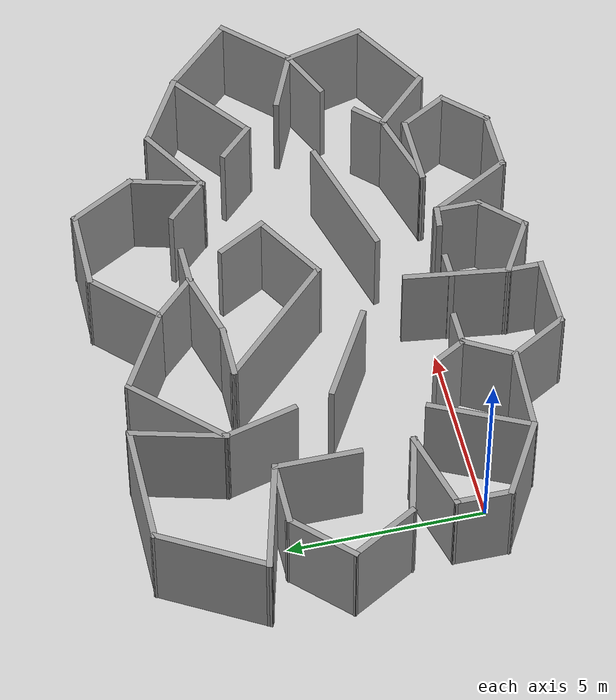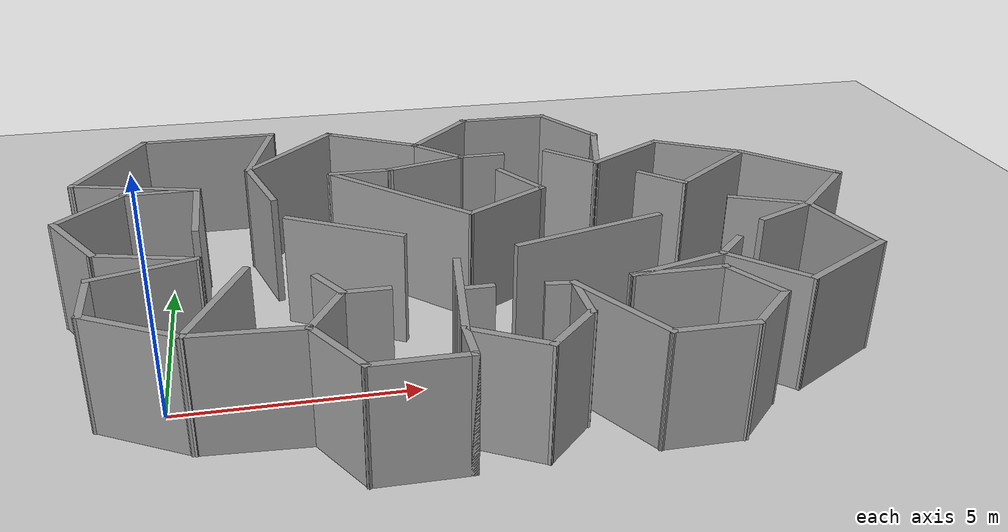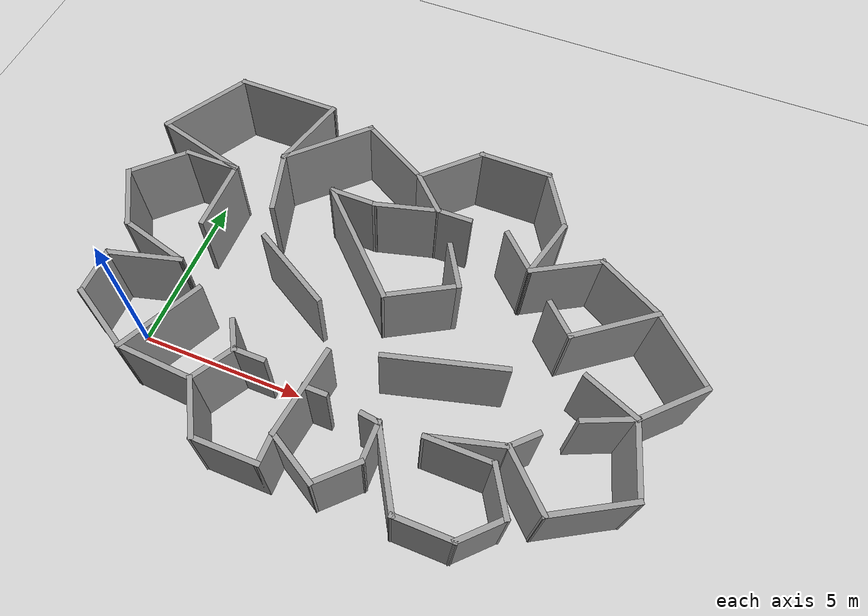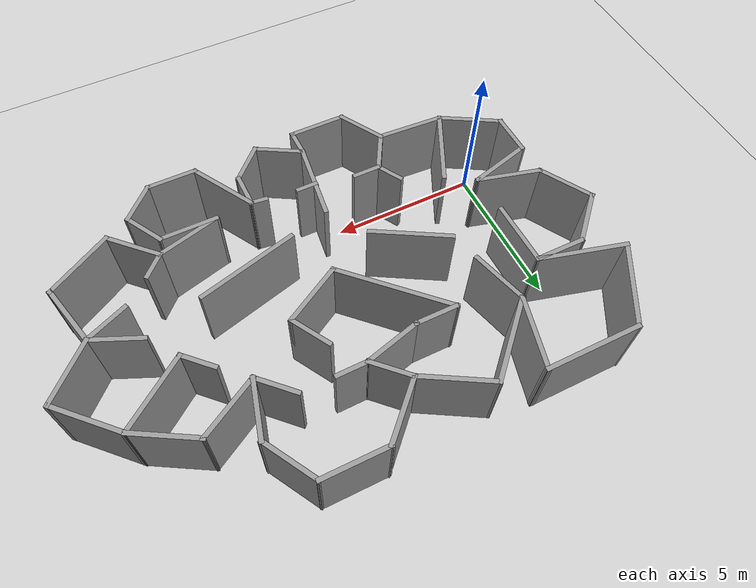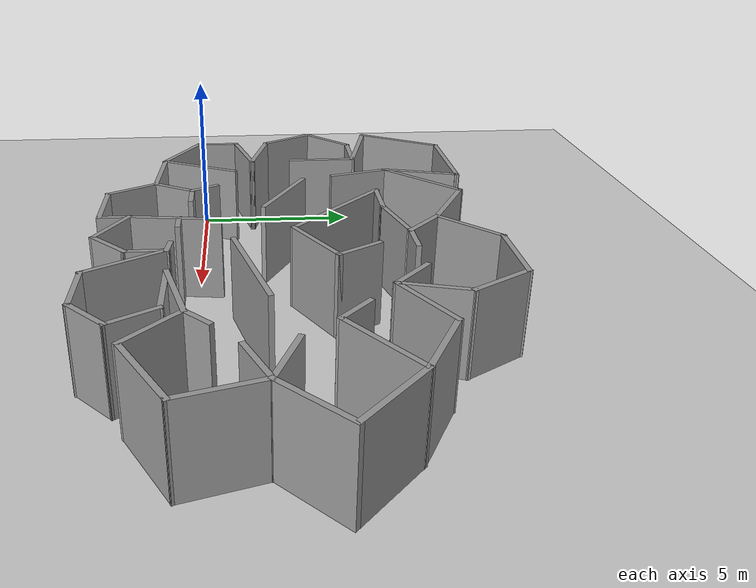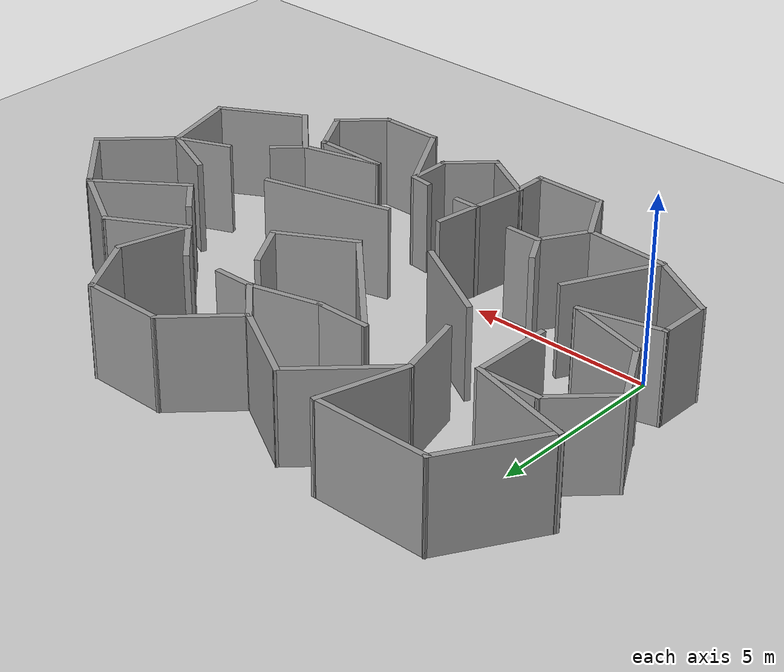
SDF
<sdf version="1.7">
 <world name="default">
  <light name="sun" type="directional">
   <pose>0 0 10 0 -0 0</pose>
   <diffuse>0.8 0.8 0.8 1</diffuse>
   <specular>0.2 0.2 0.2 1</specular>
   <attenuation>
    <range>1000</range>
    <constant>0.9</constant>
    <linear>0.01</linear>
    <quadratic>0.001</quadratic>
   </attenuation>
   <direction>-0.5 0.1 -0.9</direction>
   <spot><inner_angle>0</inner_angle><outer_angle>0</outer_angle><falloff>0</falloff></spot>
  </light>
  <model name="ground_plane">
   <static>1</static>
   <link name="link">
    <collision name="collision">
     <geometry><plane><normal>0 0 1</normal><size>100 100</size></plane></geometry>
     <surface><friction><ode><mu>100</mu><mu2>50</mu2></ode></friction></surface>
    </collision>
    <visual name="visual">
     <cast_shadows>0</cast_shadows>
     <geometry><plane><normal>0 0 1</normal><size>100 100</size></plane></geometry>
     <material>
      <script><uri>file://media/materials/scripts/gazebo.material</uri><name>Gazebo/Grey</name></script>
     </material>
    </visual>
   </link>
  </model>
  <gravity>0 0 -9.8</gravity>
  <magnetic_field>6e-06 2.3e-05 -4.2e-05</magnetic_field>
  <atmosphere type="adiabatic"/>
  <physics type="ode">
   <max_step_size>0.001</max_step_size>
   <real_time_factor>1</real_time_factor>
   <real_time_update_rate>1000</real_time_update_rate>
  </physics>
  <scene><ambient>0.4 0.4 0.4 1</ambient><background>0.7 0.7 0.7 1</background><shadows>1</shadows></scene>
  <spherical_coordinates>
   <surface_model>EARTH_WGS84</surface_model>
   <latitude_deg>0</latitude_deg>
   <longitude_deg>0</longitude_deg>
   <elevation>0</elevation>
   <heading_deg>0</heading_deg>
  </spherical_coordinates>
  <model name="unstructed">
   <pose>6.57413 2.79188 0 0 -0 0</pose>
   <link name="Wall_1">
    <collision name="Wall_1_Collision">
     <geometry><box><size>1 0.15 2.5</size></box></geometry>
     <pose>0 0 1.25 0 -0 0</pose>
    </collision>
    <visual name="Wall_1_Visual">
     <pose>0 0 1.25 0 -0 0</pose>
     <geometry><box><size>1 0.15 2.5</size></box></geometry>
     <material>
      <script><uri>file://media/materials/scripts/gazebo.material</uri><name>Gazebo/Grey</name></script>
      <ambient>1 1 1 1</ambient>
     </material>
     <meta><layer>0</layer></meta>
    </visual>
    <pose>-3.3192 -2.66283 0 0 -0 -1.0472</pose>
   </link>
   <link name="Wall_10">
    <collision name="Wall_10_Collision">
     <geometry><box><size>2.5 0.15 2.5</size></box></geometry>
     <pose>0 0 1.25 0 -0 0</pose>
    </collision>
    <visual name="Wall_10_Visual">
     <pose>0 0 1.25 0 -0 0</pose>
     <geometry><box><size>2.5 0.15 2.5</size></box></geometry>
     <material>
      <script><uri>file://media/materials/scripts/gazebo.material</uri><name>Gazebo/Grey</name></script>
      <ambient>1 1 1 1</ambient>
     </material>
     <meta><layer>0</layer></meta>
    </visual>
    <pose>1.79603 -4.49865 0 0 -0 -1.0472</pose>
   </link>
   <link name="Wall_11">
    <collision name="Wall_11_Collision">
     <geometry><box><size>1.75 0.15 2.5</size></box></geometry>
     <pose>0 0 1.25 0 -0 0</pose>
    </collision>
    <visual name="Wall_11_Visual">
     <pose>0 0 1.25 0 -0 0</pose>
     <geometry><box><size>1.75 0.15 2.5</size></box></geometry>
     <material>
      <script><uri>file://media/materials/scripts/gazebo.material</uri><name>Gazebo/Grey</name></script>
      <ambient>1 1 1 1</ambient>
     </material>
     <meta><layer>0</layer></meta>
    </visual>
    <pose>3.18353 -5.51623 0 0 -0 0</pose>
   </link>
   <link name="Wall_12">
    <collision name="Wall_12_Collision">
     <geometry><box><size>1.5 0.15 2.5</size></box></geometry>
     <pose>0 0 1.25 0 -0 0</pose>
    </collision>
    <visual name="Wall_12_Visual">
     <pose>0 0 1.25 0 -0 0</pose>
     <geometry><box><size>1.5 0.15 2.5</size></box></geometry>
     <material>
      <script><uri>file://media/materials/scripts/gazebo.material</uri><name>Gazebo/Grey</name></script>
      <ambient>1 1 1 1</ambient>
     </material>
     <meta><layer>0</layer></meta>
    </visual>
    <pose>4.46083 -5.03893 0 0 -0 0.785398</pose>
   </link>
   <link name="Wall_13">
    <collision name="Wall_13_Collision">
     <geometry><box><size>1.5 0.15 2.5</size></box></geometry>
     <pose>0 0 1.25 0 -0 0</pose>
    </collision>
    <visual name="Wall_13_Visual">
     <pose>0 0 1.25 0 -0 0</pose>
     <geometry><box><size>1.5 0.15 2.5</size></box></geometry>
     <material>
      <script><uri>file://media/materials/scripts/gazebo.material</uri><name>Gazebo/Grey</name></script>
      <ambient>1 1 1 1</ambient>
     </material>
     <meta><layer>0</layer></meta>
    </visual>
    <pose>4.60063 -3.97707 0 0 -0 2.0944</pose>
   </link>
   <link name="Wall_14">
    <collision name="Wall_14_Collision">
     <geometry><box><size>2 0.15 2.5</size></box></geometry>
     <pose>0 0 1.25 0 -0 0</pose>
    </collision>
    <visual name="Wall_14_Visual">
     <pose>0 0 1.25 0 -0 0</pose>
     <geometry><box><size>2 0.15 2.5</size></box></geometry>
     <material>
      <script><uri>file://media/materials/scripts/gazebo.material</uri><name>Gazebo/Grey</name></script>
      <ambient>1 1 1 1</ambient>
     </material>
     <meta><layer>0</layer></meta>
    </visual>
    <pose>3.33813 -3.3925 0 0 -0 3.14159</pose>
   </link>
   <link name="Wall_15">
    <collision name="Wall_15_Collision">
     <geometry><box><size>2.25 0.15 2.5</size></box></geometry>
     <pose>0 0 1.25 0 -0 0</pose>
    </collision>
    <visual name="Wall_15_Visual">
     <pose>0 0 1.25 0 -0 0</pose>
     <geometry><box><size>2.25 0.15 2.5</size></box></geometry>
     <material>
      <script><uri>file://media/materials/scripts/gazebo.material</uri><name>Gazebo/Grey</name></script>
      <ambient>1 1 1 1</ambient>
     </material>
     <meta><layer>0</layer></meta>
    </visual>
    <pose>3.42735 -3.12074 0 0 -0 0.261799</pose>
   </link>
   <link name="Wall_16">
    <collision name="Wall_16_Collision">
     <geometry><box><size>2 0.15 2.5</size></box></geometry>
     <pose>0 0 1.25 0 -0 0</pose>
    </collision>
    <visual name="Wall_16_Visual">
     <pose>0 0 1.25 0 -0 0</pose>
     <geometry><box><size>2 0.15 2.5</size></box></geometry>
     <material>
      <script><uri>file://media/materials/scripts/gazebo.material</uri><name>Gazebo/Grey</name></script>
      <ambient>1 1 1 1</ambient>
     </material>
     <meta><layer>0</layer></meta>
    </visual>
    <pose>5.09565 -3.50305 0 0 -0 -0.785398</pose>
   </link>
   <link name="Wall_17">
    <collision name="Wall_17_Collision">
     <geometry><box><size>2.5 0.15 2.5</size></box></geometry>
     <pose>0 0 1.25 0 -0 0</pose>
    </collision>
    <visual name="Wall_17_Visual">
     <pose>0 0 1.25 0 -0 0</pose>
     <geometry><box><size>2.5 0.15 2.5</size></box></geometry>
     <material>
      <script><uri>file://media/materials/scripts/gazebo.material</uri><name>Gazebo/Grey</name></script>
      <ambient>1 1 1 1</ambient>
     </material>
     <meta><layer>0</layer></meta>
    </visual>
    <pose>6.7673 -3.56963 0 0 -0 0.523599</pose>
   </link>
   <link name="Wall_18">
    <collision name="Wall_18_Collision">
     <geometry><box><size>2.25 0.15 2.5</size></box></geometry>
     <pose>0 0 1.25 0 -0 0</pose>
    </collision>
    <visual name="Wall_18_Visual">
     <pose>0 0 1.25 0 -0 0</pose>
     <geometry><box><size>2.25 0.15 2.5</size></box></geometry>
     <material>
      <script><uri>file://media/materials/scripts/gazebo.material</uri><name>Gazebo/Grey</name></script>
      <ambient>1 1 1 1</ambient>
     </material>
     <meta><layer>0</layer></meta>
    </visual>
    <pose>7.51312 -1.96791 0 0 -0 1.8326</pose>
   </link>
   <link name="Wall_19">
    <collision name="Wall_19_Collision">
     <geometry><box><size>2.25 0.15 2.5</size></box></geometry>
     <pose>0 0 1.25 0 -0 0</pose>
    </collision>
    <visual name="Wall_19_Visual">
     <pose>0 0 1.25 0 -0 0</pose>
     <geometry><box><size>2.25 0.15 2.5</size></box></geometry>
     <material>
      <script><uri>file://media/materials/scripts/gazebo.material</uri><name>Gazebo/Grey</name></script>
      <ambient>1 1 1 1</ambient>
     </material>
     <meta><layer>0</layer></meta>
    </visual>
    <pose>7.98382 -0.211223 0 0 -0 0.785398</pose>
   </link>
   <link name="Wall_20">
    <collision name="Wall_20_Collision">
     <geometry><box><size>2.5 0.15 2.5</size></box></geometry>
     <pose>0 0 1.25 0 -0 0</pose>
    </collision>
    <visual name="Wall_20_Visual">
     <pose>0 0 1.25 0 -0 0</pose>
     <geometry><box><size>2.5 0.15 2.5</size></box></geometry>
     <material>
      <script><uri>file://media/materials/scripts/gazebo.material</uri><name>Gazebo/Grey</name></script>
      <ambient>1 1 1 1</ambient>
     </material>
     <meta><layer>0</layer></meta>
    </visual>
    <pose>7.89543 1.36209 0 0 -0 2.35619</pose>
   </link>
   <link name="Wall_21">
    <collision name="Wall_21_Collision">
     <geometry><box><size>2.25 0.15 2.5</size></box></geometry>
     <pose>0 0 1.25 0 -0 0</pose>
    </collision>
    <visual name="Wall_21_Visual">
     <pose>0 0 1.25 0 -0 0</pose>
     <geometry><box><size>2.25 0.15 2.5</size></box></geometry>
     <material>
      <script><uri>file://media/materials/scripts/gazebo.material</uri><name>Gazebo/Grey</name></script>
      <ambient>1 1 1 1</ambient>
     </material>
     <meta><layer>0</layer></meta>
    </visual>
    <pose>6.15526 2.71794 0 0 -0 2.61799</pose>
   </link>
   <link name="Wall_22">
    <collision name="Wall_22_Collision">
     <geometry><box><size>2.25 0.15 2.5</size></box></geometry>
     <pose>0 0 1.25 0 -0 0</pose>
    </collision>
    <visual name="Wall_22_Visual">
     <pose>0 0 1.25 0 -0 0</pose>
     <geometry><box><size>2.25 0.15 2.5</size></box></geometry>
     <material>
      <script><uri>file://media/materials/scripts/gazebo.material</uri><name>Gazebo/Grey</name></script>
      <ambient>1 1 1 1</ambient>
     </material>
     <meta><layer>0</layer></meta>
    </visual>
    <pose>4.3366 2.71794 0 0 -0 -2.61799</pose>
   </link>
   <link name="Wall_23">
    <collision name="Wall_23_Collision">
     <geometry><box><size>2 0.15 2.5</size></box></geometry>
     <pose>0 0 1.25 0 -0 0</pose>
    </collision>
    <visual name="Wall_23_Visual">
     <pose>0 0 1.25 0 -0 0</pose>
     <geometry><box><size>2 0.15 2.5</size></box></geometry>
     <material>
      <script><uri>file://media/materials/scripts/gazebo.material</uri><name>Gazebo/Grey</name></script>
      <ambient>1 1 1 1</ambient>
     </material>
     <meta><layer>0</layer></meta>
    </visual>
    <pose>3.66668 3.08642 0 0 -0 1.309</pose>
   </link>
   <link name="Wall_24">
    <collision name="Wall_24_Collision">
     <geometry><box><size>2 0.15 2.5</size></box></geometry>
     <pose>0 0 1.25 0 -0 0</pose>
    </collision>
    <visual name="Wall_24_Visual">
     <pose>0 0 1.25 0 -0 0</pose>
     <geometry><box><size>2 0.15 2.5</size></box></geometry>
     <material>
      <script><uri>file://media/materials/scripts/gazebo.material</uri><name>Gazebo/Grey</name></script>
      <ambient>1 1 1 1</ambient>
     </material>
     <meta><layer>0</layer></meta>
    </visual>
    <pose>3.44359 4.78098 0 0 -0 2.0944</pose>
   </link>
   <link name="Wall_25">
    <collision name="Wall_25_Collision">
     <geometry><box><size>2.25 0.15 2.5</size></box></geometry>
     <pose>0 0 1.25 0 -0 0</pose>
    </collision>
    <visual name="Wall_25_Visual">
     <pose>0 0 1.25 0 -0 0</pose>
     <geometry><box><size>2.25 0.15 2.5</size></box></geometry>
     <material>
      <script><uri>file://media/materials/scripts/gazebo.material</uri><name>Gazebo/Grey</name></script>
      <ambient>1 1 1 1</ambient>
     </material>
     <meta><layer>0</layer></meta>
    </visual>
    <pose>1.93109 5.58205 0 0 -0 3.14159</pose>
   </link>
   <link name="Wall_26">
    <collision name="Wall_26_Collision">
     <geometry><box><size>2.25 0.15 2.5</size></box></geometry>
     <pose>0 0 1.25 0 -0 0</pose>
    </collision>
    <visual name="Wall_26_Visual">
     <pose>0 0 1.25 0 -0 0</pose>
     <geometry><box><size>2.25 0.15 2.5</size></box></geometry>
     <material>
      <script><uri>file://media/materials/scripts/gazebo.material</uri><name>Gazebo/Grey</name></script>
      <ambient>1 1 1 1</ambient>
     </material>
     <meta><layer>0</layer></meta>
    </visual>
    <pose>0.138628 4.83959 0 0 -0 -2.35619</pose>
   </link>
   <link name="Wall_27">
    <collision name="Wall_27_Collision">
     <geometry><box><size>2.5 0.15 2.5</size></box></geometry>
     <pose>0 0 1.25 0 -0 0</pose>
    </collision>
    <visual name="Wall_27_Visual">
     <pose>0 0 1.25 0 -0 0</pose>
     <geometry><box><size>2.5 0.15 2.5</size></box></geometry>
     <material>
      <script><uri>file://media/materials/scripts/gazebo.material</uri><name>Gazebo/Grey</name></script>
      <ambient>1 1 1 1</ambient>
     </material>
     <meta><layer>0</layer></meta>
    </visual>
    <pose>-1.62141 4.68463 0 0 -0 2.61799</pose>
   </link>
   <link name="Wall_28">
    <collision name="Wall_28_Collision">
     <geometry><box><size>3 0.15 2.5</size></box></geometry>
     <pose>0 0 1.25 0 -0 0</pose>
    </collision>
    <visual name="Wall_28_Visual">
     <pose>0 0 1.25 0 -0 0</pose>
     <geometry><box><size>3 0.15 2.5</size></box></geometry>
     <material>
      <script><uri>file://media/materials/scripts/gazebo.material</uri><name>Gazebo/Grey</name></script>
      <ambient>1 1 1 1</ambient>
     </material>
     <meta><layer>0</layer></meta>
    </visual>
    <pose>-3.64662 4.2645 0 0 -0 -2.35619</pose>
   </link>
   <link name="Wall_29">
    <collision name="Wall_29_Collision">
     <geometry><box><size>2.5 0.15 2.5</size></box></geometry>
     <pose>0 0 1.25 0 -0 0</pose>
    </collision>
    <visual name="Wall_29_Visual">
     <pose>0 0 1.25 0 -0 0</pose>
     <geometry><box><size>2.5 0.15 2.5</size></box></geometry>
     <material>
      <script><uri>file://media/materials/scripts/gazebo.material</uri><name>Gazebo/Grey</name></script>
      <ambient>1 1 1 1</ambient>
     </material>
     <meta><layer>0</layer></meta>
    </visual>
    <pose>-4.35013 4.39183 0 0 -0 1.309</pose>
   </link>
   <link name="Wall_3">
    <collision name="Wall_3_Collision">
     <geometry><box><size>1.5 0.15 2.5</size></box></geometry>
     <pose>0 0 1.25 0 -0 0</pose>
    </collision>
    <visual name="Wall_3_Visual">
     <pose>0 0 1.25 0 -0 0</pose>
     <geometry><box><size>1.5 0.15 2.5</size></box></geometry>
     <material>
      <script><uri>file://media/materials/scripts/gazebo.material</uri><name>Gazebo/Grey</name></script>
      <ambient>1 1 1 1</ambient>
     </material>
     <meta><layer>0</layer></meta>
    </visual>
    <pose>-3.4442 -3.61546 0 0 -0 -2.0944</pose>
   </link>
   <link name="Wall_30">
    <collision name="Wall_30_Collision">
     <geometry><box><size>3.25 0.15 2.5</size></box></geometry>
     <pose>0 0 1.25 0 -0 0</pose>
    </collision>
    <visual name="Wall_30_Visual">
     <pose>0 0 1.25 0 -0 0</pose>
     <geometry><box><size>3.25 0.15 2.5</size></box></geometry>
     <material>
      <script><uri>file://media/materials/scripts/gazebo.material</uri><name>Gazebo/Grey</name></script>
      <ambient>1 1 1 1</ambient>
     </material>
     <meta><layer>0</layer></meta>
    </visual>
    <pose>-5.59602 5.5268 0 0 -0 3.14159</pose>
   </link>
   <link name="Wall_31">
    <collision name="Wall_31_Collision">
     <geometry><box><size>3 0.15 2.5</size></box></geometry>
     <pose>0 0 1.25 0 -0 0</pose>
    </collision>
    <visual name="Wall_31_Visual">
     <pose>0 0 1.25 0 -0 0</pose>
     <geometry><box><size>3 0.15 2.5</size></box></geometry>
     <material>
      <script><uri>file://media/materials/scripts/gazebo.material</uri><name>Gazebo/Grey</name></script>
      <ambient>1 1 1 1</ambient>
     </material>
     <meta><layer>0</layer></meta>
    </visual>
    <pose>-7.85852 4.29271 0 0 -0 -2.0944</pose>
   </link>
   <link name="Wall_32">
    <collision name="Wall_32_Collision">
     <geometry><box><size>3 0.15 2.5</size></box></geometry>
     <pose>0 0 1.25 0 -0 0</pose>
    </collision>
    <visual name="Wall_32_Visual">
     <pose>0 0 1.25 0 -0 0</pose>
     <geometry><box><size>3 0.15 2.5</size></box></geometry>
     <material>
      <script><uri>file://media/materials/scripts/gazebo.material</uri><name>Gazebo/Grey</name></script>
      <ambient>1 1 1 1</ambient>
     </material>
     <meta><layer>0</layer></meta>
    </visual>
    <pose>-7.19458 2.68981 0 0 -0 -0.261799</pose>
   </link>
   <link name="Wall_33">
    <collision name="Wall_33_Collision">
     <geometry><box><size>1.75 0.15 2.5</size></box></geometry>
     <pose>0 0 1.25 0 -0 0</pose>
    </collision>
    <visual name="Wall_33_Visual">
     <pose>0 0 1.25 0 -0 0</pose>
     <geometry><box><size>1.75 0.15 2.5</size></box></geometry>
     <material>
      <script><uri>file://media/materials/scripts/gazebo.material</uri><name>Gazebo/Grey</name></script>
      <ambient>1 1 1 1</ambient>
     </material>
     <meta><layer>0</layer></meta>
    </visual>
    <pose>-6.61813 2.32099 0 0 -0 3.14159</pose>
   </link>
   <link name="Wall_34">
    <collision name="Wall_34_Collision">
     <geometry><box><size>2 0.15 2.5</size></box></geometry>
     <pose>0 0 1.25 0 -0 0</pose>
    </collision>
    <visual name="Wall_34_Visual">
     <pose>0 0 1.25 0 -0 0</pose>
     <geometry><box><size>2 0.15 2.5</size></box></geometry>
     <material>
      <script><uri>file://media/materials/scripts/gazebo.material</uri><name>Gazebo/Grey</name></script>
      <ambient>1 1 1 1</ambient>
     </material>
     <meta><layer>0</layer></meta>
    </visual>
    <pose>-8.07221 1.66692 0 0 -0 -2.35619</pose>
   </link>
   <link name="Wall_35">
    <collision name="Wall_35_Collision">
     <geometry><box><size>2 0.15 2.5</size></box></geometry>
     <pose>0 0 1.25 0 -0 0</pose>
    </collision>
    <visual name="Wall_35_Visual">
     <pose>0 0 1.25 0 -0 0</pose>
     <geometry><box><size>2 0.15 2.5</size></box></geometry>
     <material>
      <script><uri>file://media/materials/scripts/gazebo.material</uri><name>Gazebo/Grey</name></script>
      <ambient>1 1 1 1</ambient>
     </material>
     <meta><layer>0</layer></meta>
    </visual>
    <pose>-8.26378 0.21177 0 0 -0 -1.0472</pose>
   </link>
   <link name="Wall_36">
    <collision name="Wall_36_Collision">
     <geometry><box><size>2.25 0.15 2.5</size></box></geometry>
     <pose>0 0 1.25 0 -0 0</pose>
    </collision>
    <visual name="Wall_36_Visual">
     <pose>0 0 1.25 0 -0 0</pose>
     <geometry><box><size>2.25 0.15 2.5</size></box></geometry>
     <material>
      <script><uri>file://media/materials/scripts/gazebo.material</uri><name>Gazebo/Grey</name></script>
      <ambient>1 1 1 1</ambient>
     </material>
     <meta><layer>0</layer></meta>
    </visual>
    <pose>-6.78706 -0.861064 0 0 -0 -0.261799</pose>
   </link>
   <link name="Wall_37">
    <collision name="Wall_37_Collision">
     <geometry><box><size>2.25 0.15 2.5</size></box></geometry>
     <pose>0 0 1.25 0 -0 0</pose>
    </collision>
    <visual name="Wall_37_Visual">
     <pose>0 0 1.25 0 -0 0</pose>
     <geometry><box><size>2.25 0.15 2.5</size></box></geometry>
     <material>
      <script><uri>file://media/materials/scripts/gazebo.material</uri><name>Gazebo/Grey</name></script>
      <ambient>1 1 1 1</ambient>
     </material>
     <meta><layer>0</layer></meta>
    </visual>
    <pose>-6.78706 -1.40458 0 0 -0 -2.87979</pose>
   </link>
   <link name="Wall_38">
    <collision name="Wall_38_Collision">
     <geometry><box><size>1.5 0.15 2.5</size></box></geometry>
     <pose>0 0 1.25 0 -0 0</pose>
    </collision>
    <visual name="Wall_38_Visual">
     <pose>0 0 1.25 0 -0 0</pose>
     <geometry><box><size>1.5 0.15 2.5</size></box></geometry>
     <material>
      <script><uri>file://media/materials/scripts/gazebo.material</uri><name>Gazebo/Grey</name></script>
      <ambient>1 1 1 1</ambient>
     </material>
     <meta><layer>0</layer></meta>
    </visual>
    <pose>-7.80128 -2.35134 0 0 -0 -1.5708</pose>
   </link>
   <link name="Wall_39">
    <collision name="Wall_39_Collision">
     <geometry><box><size>2.25 0.15 2.5</size></box></geometry>
     <pose>0 0 1.25 0 -0 0</pose>
    </collision>
    <visual name="Wall_39_Visual">
     <pose>0 0 1.25 0 -0 0</pose>
     <geometry><box><size>2.25 0.15 2.5</size></box></geometry>
     <material>
      <script><uri>file://media/materials/scripts/gazebo.material</uri><name>Gazebo/Grey</name></script>
      <ambient>1 1 1 1</ambient>
     </material>
     <meta><layer>0</layer></meta>
    </visual>
    <pose>-6.89196 -3.55134 0 0 -0 -0.523599</pose>
   </link>
   <link name="Wall_4">
    <collision name="Wall_4_Collision">
     <geometry><box><size>1.75 0.15 2.5</size></box></geometry>
     <pose>0 0 1.25 0 -0 0</pose>
    </collision>
    <visual name="Wall_4_Visual">
     <pose>0 0 1.25 0 -0 0</pose>
     <geometry><box><size>1.75 0.15 2.5</size></box></geometry>
     <material>
      <script><uri>file://media/materials/scripts/gazebo.material</uri><name>Gazebo/Grey</name></script>
      <ambient>1 1 1 1</ambient>
     </material>
     <meta><layer>0</layer></meta>
    </visual>
    <pose>-3.3817 -4.89284 0 0 -0 -1.0472</pose>
   </link>
   <link name="Wall_40">
    <collision name="Wall_40_Collision">
     <geometry><box><size>2.3544 0.15 2.5</size></box></geometry>
     <pose>0 0 1.25 0 -0 0</pose>
    </collision>
    <visual name="Wall_40_Visual">
     <pose>0 0 1.25 0 -0 0</pose>
     <geometry><box><size>2.3544 0.15 2.5</size></box></geometry>
     <material>
      <script><uri>file://media/materials/scripts/gazebo.material</uri><name>Gazebo/Grey</name></script>
      <ambient>1 1 1 1</ambient>
     </material>
     <meta><layer>0</layer></meta>
    </visual>
    <pose>-4.88216 -4.13818 0 0 -0 -0.056135</pose>
   </link>
   <link name="Wall_42">
    <collision name="Wall_42_Collision">
     <geometry><box><size>1.5 0.15 2.5</size></box></geometry>
     <pose>0 0 1.25 0 -0 0</pose>
    </collision>
    <visual name="Wall_42_Visual">
     <pose>0 0 1.25 0 -0 0</pose>
     <geometry><box><size>1.5 0.15 2.5</size></box></geometry>
     <material>
      <script><uri>file://media/materials/scripts/gazebo.material</uri><name>Gazebo/Grey</name></script>
      <ambient>1 1 1 1</ambient>
     </material>
     <meta><layer>0</layer></meta>
    </visual>
    <pose>-0.126537 3.61983 0 0 -0 -0.785398</pose>
   </link>
   <link name="Wall_43">
    <collision name="Wall_43_Collision">
     <geometry><box><size>2 0.15 2.5</size></box></geometry>
     <pose>0 0 1.25 0 -0 0</pose>
    </collision>
    <visual name="Wall_43_Visual">
     <pose>0 0 1.25 0 -0 0</pose>
     <geometry><box><size>2 0.15 2.5</size></box></geometry>
     <material>
      <script><uri>file://media/materials/scripts/gazebo.material</uri><name>Gazebo/Grey</name></script>
      <ambient>1 1 1 1</ambient>
     </material>
     <meta><layer>0</layer></meta>
    </visual>
    <pose>-0.542721 2.90312 0 0 -0 -2.87979</pose>
   </link>
   <link name="Wall_44">
    <collision name="Wall_44_Collision">
     <geometry><box><size>1.5 0.15 2.5</size></box></geometry>
     <pose>0 0 1.25 0 -0 0</pose>
    </collision>
    <visual name="Wall_44_Visual">
     <pose>0 0 1.25 0 -0 0</pose>
     <geometry><box><size>1.5 0.15 2.5</size></box></geometry>
     <material>
      <script><uri>file://media/materials/scripts/gazebo.material</uri><name>Gazebo/Grey</name></script>
      <ambient>1 1 1 1</ambient>
     </material>
     <meta><layer>0</layer></meta>
    </visual>
    <pose>-2.1112 2.66372 0 0 -0 3.14159</pose>
   </link>
   <link name="Wall_45">
    <collision name="Wall_45_Collision">
     <geometry><box><size>4 0.15 2.5</size></box></geometry>
     <pose>0 0 1.25 0 -0 0</pose>
    </collision>
    <visual name="Wall_45_Visual">
     <pose>0 0 1.25 0 -0 0</pose>
     <geometry><box><size>4 0.15 2.5</size></box></geometry>
     <material>
      <script><uri>file://media/materials/scripts/gazebo.material</uri><name>Gazebo/Grey</name></script>
      <ambient>1 1 1 1</ambient>
     </material>
     <meta><layer>0</layer></meta>
    </visual>
    <pose>-1.42502 1.30254 0 0 -0 -0.785398</pose>
   </link>
   <link name="Wall_46">
    <collision name="Wall_46_Collision">
     <geometry><box><size>2.25 0.15 2.5</size></box></geometry>
     <pose>0 0 1.25 0 -0 0</pose>
    </collision>
    <visual name="Wall_46_Visual">
     <pose>0 0 1.25 0 -0 0</pose>
     <geometry><box><size>2.25 0.15 2.5</size></box></geometry>
     <material>
      <script><uri>file://media/materials/scripts/gazebo.material</uri><name>Gazebo/Grey</name></script>
      <ambient>1 1 1 1</ambient>
     </material>
     <meta><layer>0</layer></meta>
    </visual>
    <pose>0.845485 0.466355 0 0 -0 0.523599</pose>
   </link>
   <link name="Wall_47">
    <collision name="Wall_47_Collision">
     <geometry><box><size>1.5 0.15 2.5</size></box></geometry>
     <pose>0 0 1.25 0 -0 0</pose>
    </collision>
    <visual name="Wall_47_Visual">
     <pose>0 0 1.25 0 -0 0</pose>
     <geometry><box><size>1.5 0.15 2.5</size></box></geometry>
     <material>
      <script><uri>file://media/materials/scripts/gazebo.material</uri><name>Gazebo/Grey</name></script>
      <ambient>1 1 1 1</ambient>
     </material>
     <meta><layer>0</layer></meta>
    </visual>
    <pose>1.41731 1.57592 0 0 -0 2.0944</pose>
   </link>
   <link name="Wall_49">
    <collision name="Wall_49_Collision">
     <geometry><box><size>1.5 0.15 2.5</size></box></geometry>
     <pose>0 0 1.25 0 -0 0</pose>
    </collision>
    <visual name="Wall_49_Visual">
     <pose>0 0 1.25 0 -0 0</pose>
     <geometry><box><size>1.5 0.15 2.5</size></box></geometry>
     <material>
      <script><uri>file://media/materials/scripts/gazebo.material</uri><name>Gazebo/Grey</name></script>
      <ambient>1 1 1 1</ambient>
     </material>
     <meta><layer>0</layer></meta>
    </visual>
    <pose>2.94998 2.67024 0 0 -0 2.35619</pose>
   </link>
   <link name="Wall_5">
    <collision name="Wall_5_Collision">
     <geometry><box><size>2 0.15 2.5</size></box></geometry>
     <pose>0 0 1.25 0 -0 0</pose>
    </collision>
    <visual name="Wall_5_Visual">
     <pose>0 0 1.25 0 -0 0</pose>
     <geometry><box><size>2 0.15 2.5</size></box></geometry>
     <material>
      <script><uri>file://media/materials/scripts/gazebo.material</uri><name>Gazebo/Grey</name></script>
      <ambient>1 1 1 1</ambient>
     </material>
     <meta><layer>0</layer></meta>
    </visual>
    <pose>-2.0567 -5.58566 0 0 -0 0</pose>
   </link>
   <link name="Wall_51">
    <collision name="Wall_51_Collision">
     <geometry><box><size>1.12238 0.15 2.5</size></box></geometry>
     <pose>0 0 1.25 0 -0 0</pose>
    </collision>
    <visual name="Wall_51_Visual">
     <pose>0 0 1.25 0 -0 0</pose>
     <geometry><box><size>1.12238 0.15 2.5</size></box></geometry>
     <material>
      <script><uri>file://media/materials/scripts/gazebo.material</uri><name>Gazebo/Grey</name></script>
      <ambient>1 1 1 1</ambient>
     </material>
     <meta><layer>0</layer></meta>
    </visual>
    <pose>0.836914 3.14855 0 0 -0 -3.12921</pose>
   </link>
   <link name="Wall_53">
    <collision name="Wall_53_Collision">
     <geometry><box><size>1 0.15 2.5</size></box></geometry>
     <pose>0 0 1.25 0 -0 0</pose>
    </collision>
    <visual name="Wall_53_Visual">
     <pose>0 0 1.25 0 -0 0</pose>
     <geometry><box><size>1 0.15 2.5</size></box></geometry>
     <material>
      <script><uri>file://media/materials/scripts/gazebo.material</uri><name>Gazebo/Grey</name></script>
      <ambient>1 1 1 1</ambient>
     </material>
     <meta><layer>0</layer></meta>
    </visual>
    <pose>4.74209 -2.54846 0 0 -0 0.785398</pose>
   </link>
   <link name="Wall_55">
    <collision name="Wall_55_Collision">
     <geometry><box><size>1.57873 0.15 2.5</size></box></geometry>
     <pose>0 0 1.25 0 -0 0</pose>
    </collision>
    <visual name="Wall_55_Visual">
     <pose>0 0 1.25 0 -0 0</pose>
     <geometry><box><size>1.57873 0.15 2.5</size></box></geometry>
     <material>
      <script><uri>file://media/materials/scripts/gazebo.material</uri><name>Gazebo/Grey</name></script>
      <ambient>1 1 1 1</ambient>
     </material>
     <meta><layer>0</layer></meta>
    </visual>
    <pose>6.58642 -1.23895 0 0 -0 0.410778</pose>
   </link>
   <link name="Wall_57">
    <collision name="Wall_57_Collision">
     <geometry><box><size>2.70983 0.15 2.5</size></box></geometry>
     <pose>0 0 1.25 0 -0 0</pose>
    </collision>
    <visual name="Wall_57_Visual">
     <pose>0 0 1.25 0 -0 0</pose>
     <geometry><box><size>2.70983 0.15 2.5</size></box></geometry>
     <material>
      <script><uri>file://media/materials/scripts/gazebo.material</uri><name>Gazebo/Grey</name></script>
      <ambient>1 1 1 1</ambient>
     </material>
     <meta><layer>0</layer></meta>
    </visual>
    <pose>6.04071 1.42491 0 0 -0 0.643581</pose>
   </link>
   <link name="Wall_6">
    <collision name="Wall_6_Collision">
     <geometry><box><size>1 0.15 2.5</size></box></geometry>
     <pose>0 0 1.25 0 -0 0</pose>
    </collision>
    <visual name="Wall_6_Visual">
     <pose>0 0 1.25 0 -0 0</pose>
     <geometry><box><size>1 0.15 2.5</size></box></geometry>
     <material>
      <script><uri>file://media/materials/scripts/gazebo.material</uri><name>Gazebo/Grey</name></script>
      <ambient>1 1 1 1</ambient>
     </material>
     <meta><layer>0</layer></meta>
    </visual>
    <pose>-1.1317 -5.16066 0 0 -0 1.5708</pose>
   </link>
   <link name="Wall_60">
    <collision name="Wall_60_Collision">
     <geometry><box><size>1.80827 0.15 2.5</size></box></geometry>
     <pose>0 0 1.25 0 -0 0</pose>
    </collision>
    <visual name="Wall_60_Visual">
     <pose>0 0 1.25 0 -0 0</pose>
     <geometry><box><size>1.80827 0.15 2.5</size></box></geometry>
     <material>
      <script><uri>file://media/materials/scripts/gazebo.material</uri><name>Gazebo/Grey</name></script>
      <ambient>1 1 1 1</ambient>
     </material>
     <meta><layer>0</layer></meta>
    </visual>
    <pose>6.48089 -0.623318 0 0 -0 -0.409825</pose>
   </link>
   <link name="Wall_62">
    <collision name="Wall_62_Collision">
     <geometry><box><size>1.25 0.15 2.5</size></box></geometry>
     <pose>0 0 1.25 0 -0 0</pose>
    </collision>
    <visual name="Wall_62_Visual">
     <pose>0 0 1.25 0 -0 0</pose>
     <geometry><box><size>1.25 0.15 2.5</size></box></geometry>
     <material>
      <script><uri>file://media/materials/scripts/gazebo.material</uri><name>Gazebo/Grey</name></script>
      <ambient>1 1 1 1</ambient>
     </material>
     <meta><layer>0</layer></meta>
    </visual>
    <pose>4.62793 1.04578 0 0 -0 2.35619</pose>
   </link>
   <link name="Wall_64">
    <collision name="Wall_64_Collision">
     <geometry><box><size>2.75109 0.15 2.5</size></box></geometry>
     <pose>0 0 1.25 0 -0 0</pose>
    </collision>
    <visual name="Wall_64_Visual">
     <pose>0 0 1.25 0 -0 0</pose>
     <geometry><box><size>2.75109 0.15 2.5</size></box></geometry>
     <material>
      <script><uri>file://media/materials/scripts/gazebo.material</uri><name>Gazebo/Grey</name></script>
      <ambient>1 1 1 1</ambient>
     </material>
     <meta><layer>0</layer></meta>
    </visual>
    <pose>-0.959679 -3.44654 0 0 -0 -1.70345</pose>
   </link>
   <link name="Wall_66">
    <collision name="Wall_66_Collision">
     <geometry><box><size>1 0.15 2.5</size></box></geometry>
     <pose>0 0 1.25 0 -0 0</pose>
    </collision>
    <visual name="Wall_66_Visual">
     <pose>0 0 1.25 0 -0 0</pose>
     <geometry><box><size>1 0.15 2.5</size></box></geometry>
     <material>
      <script><uri>file://media/materials/scripts/gazebo.material</uri><name>Gazebo/Grey</name></script>
      <ambient>1 1 1 1</ambient>
     </material>
     <meta><layer>0</layer></meta>
    </visual>
    <pose>-2.6817 -3.03089 0 0 -0 0</pose>
   </link>
   <link name="Wall_68">
    <collision name="Wall_68_Collision">
     <geometry><box><size>0.633822 0.15 2.5</size></box></geometry>
     <pose>0 0 1.25 0 -0 0</pose>
    </collision>
    <visual name="Wall_68_Visual">
     <pose>0 0 1.25 0 -0 0</pose>
     <geometry><box><size>0.633822 0.15 2.5</size></box></geometry>
     <material>
      <script><uri>file://media/materials/scripts/gazebo.material</uri><name>Gazebo/Grey</name></script>
      <ambient>1 1 1 1</ambient>
     </material>
     <meta><layer>0</layer></meta>
    </visual>
    <pose>0.968473 -3.4512 0 0 -0 -0.123779</pose>
   </link>
   <link name="Wall_7">
    <collision name="Wall_7_Collision">
     <geometry><box><size>1.75 0.15 2.5</size></box></geometry>
     <pose>0 0 1.25 0 -0 0</pose>
    </collision>
    <visual name="Wall_7_Visual">
     <pose>0 0 1.25 0 -0 0</pose>
     <geometry><box><size>1.75 0.15 2.5</size></box></geometry>
     <material>
      <script><uri>file://media/materials/scripts/gazebo.material</uri><name>Gazebo/Grey</name></script>
      <ambient>1 1 1 1</ambient>
     </material>
     <meta><layer>0</layer></meta>
    </visual>
    <pose>-0.438881 -5.13566 0 0 -0 -0.523599</pose>
   </link>
   <link name="Wall_70">
    <collision name="Wall_70_Collision">
     <geometry><box><size>0.75 0.15 2.5</size></box></geometry>
     <pose>0 0 1.25 0 -0 0</pose>
    </collision>
    <visual name="Wall_70_Visual">
     <pose>0 0 1.25 0 -0 0</pose>
     <geometry><box><size>0.75 0.15 2.5</size></box></geometry>
     <material>
      <script><uri>file://media/materials/scripts/gazebo.material</uri><name>Gazebo/Grey</name></script>
      <ambient>1 1 1 1</ambient>
     </material>
     <meta><layer>0</layer></meta>
    </visual>
    <pose>-0.650633 -3.29891 0 0 -0 0</pose>
   </link>
   <link name="Wall_72">
    <collision name="Wall_72_Collision">
     <geometry><box><size>2.75061 0.15 2.5</size></box></geometry>
     <pose>0 0 1.25 0 -0 0</pose>
    </collision>
    <visual name="Wall_72_Visual">
     <pose>0 0 1.25 0 -0 0</pose>
     <geometry><box><size>2.75061 0.15 2.5</size></box></geometry>
     <material>
      <script><uri>file://media/materials/scripts/gazebo.material</uri><name>Gazebo/Grey</name></script>
      <ambient>1 1 1 1</ambient>
     </material>
     <meta><layer>0</layer></meta>
    </visual>
    <pose>-5.41534 -2.90632 0 0 -0 -2.02225</pose>
   </link>
   <link name="Wall_74">
    <collision name="Wall_74_Collision">
     <geometry><box><size>2.75 0.15 2.5</size></box></geometry>
     <pose>0 0 1.25 0 -0 0</pose>
    </collision>
    <visual name="Wall_74_Visual">
     <pose>0 0 1.25 0 -0 0</pose>
     <geometry><box><size>2.75 0.15 2.5</size></box></geometry>
     <material>
      <script><uri>file://media/materials/scripts/gazebo.material</uri><name>Gazebo/Grey</name></script>
      <ambient>1 1 1 1</ambient>
     </material>
     <meta><layer>0</layer></meta>
    </visual>
    <pose>-2.79699 -0.188878 0 0 -0 -0.523599</pose>
   </link>
   <link name="Wall_76">
    <collision name="Wall_76_Collision">
     <geometry><box><size>2 0.15 2.5</size></box></geometry>
     <pose>0 0 1.25 0 -0 0</pose>
    </collision>
    <visual name="Wall_76_Visual">
     <pose>0 0 1.25 0 -0 0</pose>
     <geometry><box><size>2 0.15 2.5</size></box></geometry>
     <material>
      <script><uri>file://media/materials/scripts/gazebo.material</uri><name>Gazebo/Grey</name></script>
      <ambient>1 1 1 1</ambient>
     </material>
     <meta><layer>0</layer></meta>
    </visual>
    <pose>-4.41484 2.36339 0 0 -0 -1.309</pose>
   </link>
   <link name="Wall_78">
    <collision name="Wall_78_Collision">
     <geometry><box><size>2.25 0.15 2.5</size></box></geometry>
     <pose>0 0 1.25 0 -0 0</pose>
    </collision>
    <visual name="Wall_78_Visual">
     <pose>0 0 1.25 0 -0 0</pose>
     <geometry><box><size>2.25 0.15 2.5</size></box></geometry>
     <material>
      <script><uri>file://media/materials/scripts/gazebo.material</uri><name>Gazebo/Grey</name></script>
      <ambient>1 1 1 1</ambient>
     </material>
     <meta><layer>0</layer></meta>
    </visual>
    <pose>-5.81813 1.27099 0 0 -0 -1.5708</pose>
   </link>
   <link name="Wall_8">
    <collision name="Wall_8_Collision">
     <geometry><box><size>1.5 0.15 2.5</size></box></geometry>
     <pose>0 0 1.25 0 -0 0</pose>
    </collision>
    <visual name="Wall_8_Visual">
     <pose>0 0 1.25 0 -0 0</pose>
     <geometry><box><size>1.5 0.15 2.5</size></box></geometry>
     <material>
      <script><uri>file://media/materials/scripts/gazebo.material</uri><name>Gazebo/Grey</name></script>
      <ambient>1 1 1 1</ambient>
     </material>
     <meta><layer>0</layer></meta>
    </visual>
    <pose>0.731236 -5.05837 0 0 -0 0.785398</pose>
   </link>
   <link name="Wall_80">
    <collision name="Wall_80_Collision">
     <geometry><box><size>3.5 0.15 2.5</size></box></geometry>
     <pose>0 0 1.25 0 -0 0</pose>
    </collision>
    <visual name="Wall_80_Visual">
     <pose>0 0 1.25 0 -0 0</pose>
     <geometry><box><size>3.5 0.15 2.5</size></box></geometry>
     <material>
      <script><uri>file://media/materials/scripts/gazebo.material</uri><name>Gazebo/Grey</name></script>
      <ambient>1 1 1 1</ambient>
     </material>
     <meta><layer>0</layer></meta>
    </visual>
    <pose>2.19246 -1.30282 0 0 -0 0.261799</pose>
   </link>
   <link name="Wall_9">
    <collision name="Wall_9_Collision">
     <geometry><box><size>1.25 0.15 2.5</size></box></geometry>
     <pose>0 0 1.25 0 -0 0</pose>
    </collision>
    <visual name="Wall_9_Visual">
     <pose>0 0 1.25 0 -0 0</pose>
     <geometry><box><size>1.25 0.15 2.5</size></box></geometry>
     <material>
      <script><uri>file://media/materials/scripts/gazebo.material</uri><name>Gazebo/Grey</name></script>
      <ambient>1 1 1 1</ambient>
     </material>
     <meta><layer>0</layer></meta>
    </visual>
    <pose>1.20853 -4.03107 0 0 -0 1.5708</pose>
   </link>
   <static>1</static>
  </model>
 </world>
</sdf>
